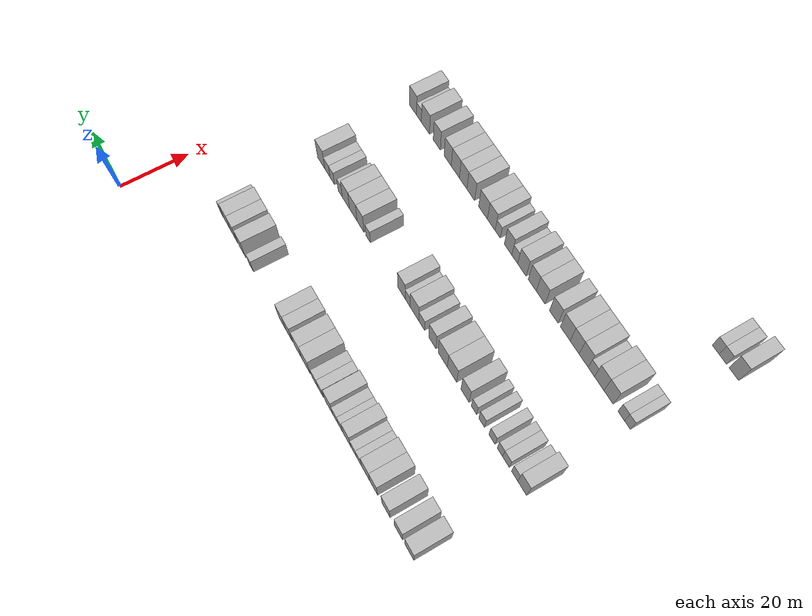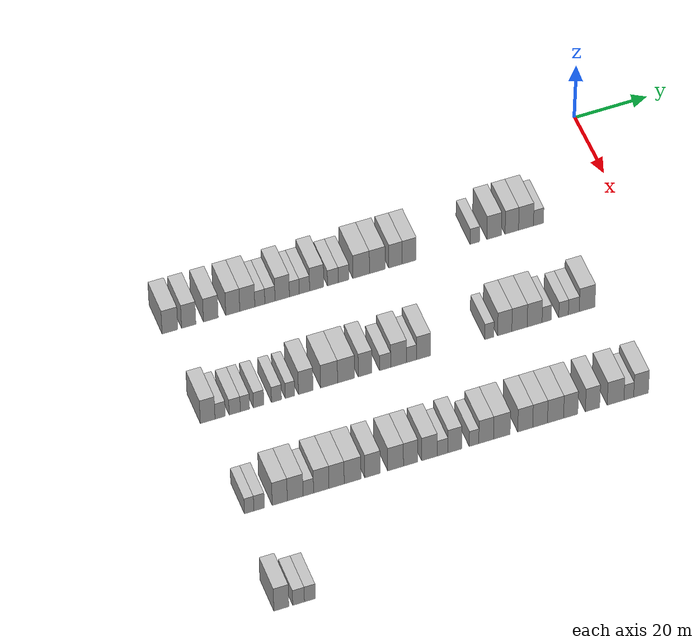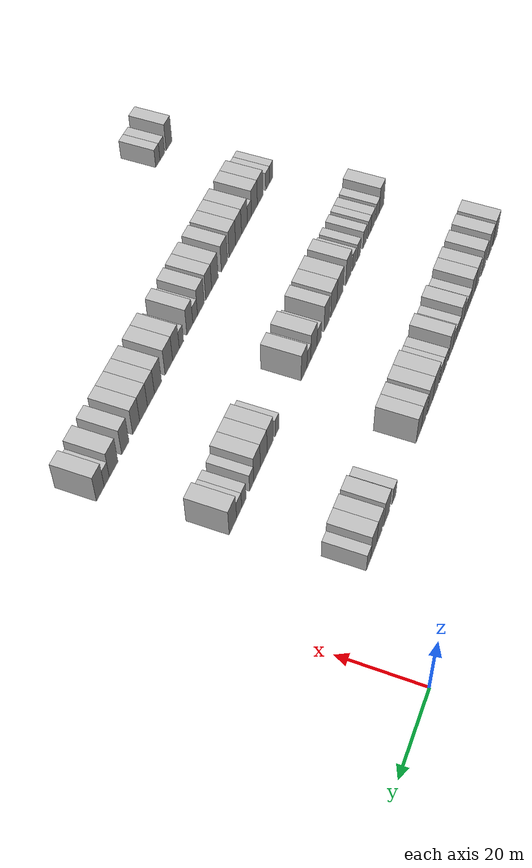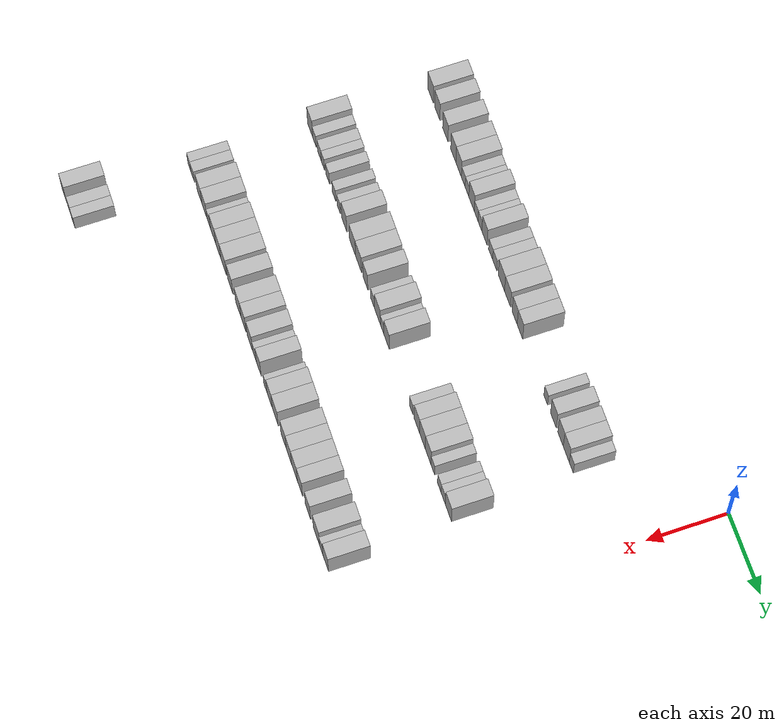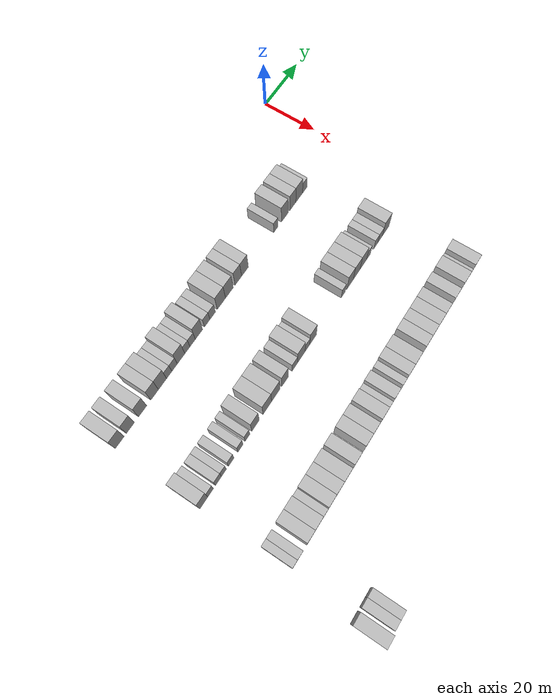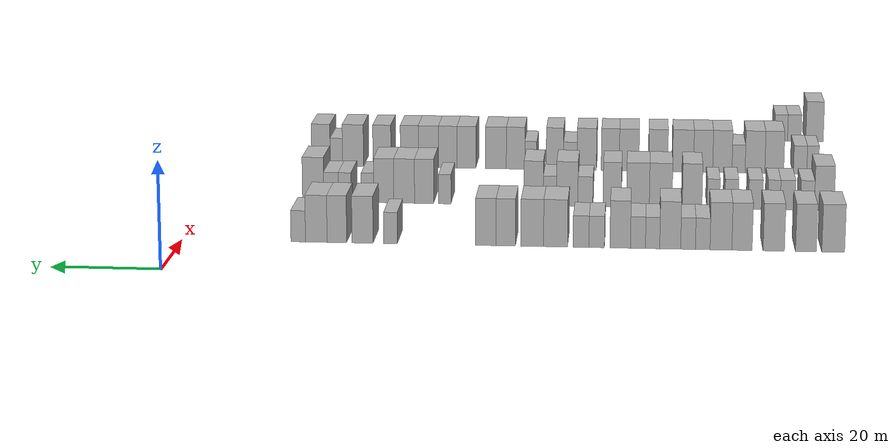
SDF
<sdf version="1.6">
 <world name="default">
  <model name="building_88">
   <static>1</static>
   <pose>25.0000 -120.6098 0 0.000000 0.000000 0.000000</pose>
   <link name="link">
    <pose>0 0 4.50 0 0 0</pose>
    <collision name="collision"><geometry><box><size>10.0000 4.1517 9.0000</size></box></geometry></collision>
    <visual name="visual">
     <cast_shadows>0</cast_shadows>
     <geometry><box><size>10.0000 4.1517 9.0000</size></box></geometry>
     <material>
      <script>
       <uri>model://HANNAS_wall/materials/scripts</uri>
       <uri>model://HANNAS_wall/materials/textures</uri>
       <name>vrc/HANNAS_wall</name>
      </script>
     </material>
    </visual>
   </link>
  </model>
  <model name="building_89">
   <static>1</static>
   <pose>25.0000 -115.6370 0 0.000000 0.000000 0.000000</pose>
   <link name="link">
    <pose>0 0 4.50 0 0 0</pose>
    <collision name="collision"><geometry><box><size>10.0000 3.7940 9.0000</size></box></geometry></collision>
    <visual name="visual">
     <cast_shadows>0</cast_shadows>
     <geometry><box><size>10.0000 3.7940 9.0000</size></box></geometry>
     <material>
      <script>
       <uri>model://HANNAS_wall/materials/scripts</uri>
       <uri>model://HANNAS_wall/materials/textures</uri>
       <name>vrc/HANNAS_wall</name>
      </script>
     </material>
    </visual>
   </link>
  </model>
  <model name="building_90">
   <static>1</static>
   <pose>25.0000 -109.7876 0 0.000000 0.000000 0.000000</pose>
   <link name="link">
    <pose>0 0 4.50 0 0 0</pose>
    <collision name="collision"><geometry><box><size>10.0000 3.9049 9.0000</size></box></geometry></collision>
    <visual name="visual">
     <cast_shadows>0</cast_shadows>
     <geometry><box><size>10.0000 3.9049 9.0000</size></box></geometry>
     <material>
      <script>
       <uri>model://HANNAS_wall/materials/scripts</uri>
       <uri>model://HANNAS_wall/materials/textures</uri>
       <name>vrc/HANNAS_wall</name>
      </script>
     </material>
    </visual>
   </link>
  </model>
  <model name="building_91">
   <static>1</static>
   <pose>25.0000 -103.9787 0 0.000000 0.000000 0.000000</pose>
   <link name="link">
    <pose>0 0 4.50 0 0 0</pose>
    <collision name="collision"><geometry><box><size>10.0000 3.7131 9.0000</size></box></geometry></collision>
    <visual name="visual">
     <cast_shadows>0</cast_shadows>
     <geometry><box><size>10.0000 3.7131 9.0000</size></box></geometry>
     <material>
      <script>
       <uri>model://HANNAS_wall/materials/scripts</uri>
       <uri>model://HANNAS_wall/materials/textures</uri>
       <name>vrc/HANNAS_wall</name>
      </script>
     </material>
    </visual>
   </link>
  </model>
  <model name="building_92">
   <static>1</static>
   <pose>25.0000 -100.1239 0 0.000000 0.000000 0.000000</pose>
   <link name="link">
    <pose>0 0 4.50 0 0 0</pose>
    <collision name="collision"><geometry><box><size>10.0000 3.9965 9.0000</size></box></geometry></collision>
    <visual name="visual">
     <cast_shadows>0</cast_shadows>
     <geometry><box><size>10.0000 3.9965 9.0000</size></box></geometry>
     <material>
      <script>
       <uri>model://HANNAS_wall/materials/scripts</uri>
       <uri>model://HANNAS_wall/materials/textures</uri>
       <name>vrc/HANNAS_wall</name>
      </script>
     </material>
    </visual>
   </link>
  </model>
  <model name="building_93">
   <static>1</static>
   <pose>25.0000 -96.7879 0 0.000000 0.000000 0.000000</pose>
   <link name="link">
    <pose>0 0 3.00 0 0 0</pose>
    <collision name="collision"><geometry><box><size>10.0000 2.6755 6.0000</size></box></geometry></collision>
    <visual name="visual">
     <cast_shadows>0</cast_shadows>
     <geometry><box><size>10.0000 2.6755 6.0000</size></box></geometry>
     <material>
      <script>
       <uri>model://HANNAS_wall/materials/scripts</uri>
       <uri>model://HANNAS_wall/materials/textures</uri>
       <name>vrc/HANNAS_wall</name>
      </script>
     </material>
    </visual>
   </link>
  </model>
  <model name="building_94">
   <static>1</static>
   <pose>25.0000 -94.0991 0 0.000000 0.000000 0.000000</pose>
   <link name="link">
    <pose>0 0 3.00 0 0 0</pose>
    <collision name="collision"><geometry><box><size>10.0000 2.7020 6.0000</size></box></geometry></collision>
    <visual name="visual">
     <cast_shadows>0</cast_shadows>
     <geometry><box><size>10.0000 2.7020 6.0000</size></box></geometry>
     <material>
      <script>
       <uri>model://HANNAS_wall/materials/scripts</uri>
       <uri>model://HANNAS_wall/materials/textures</uri>
       <name>vrc/HANNAS_wall</name>
      </script>
     </material>
    </visual>
   </link>
  </model>
  <model name="building_95">
   <static>1</static>
   <pose>25.0000 -90.8267 0 0.000000 0.000000 0.000000</pose>
   <link name="link">
    <pose>0 0 4.50 0 0 0</pose>
    <collision name="collision"><geometry><box><size>10.0000 3.8428 9.0000</size></box></geometry></collision>
    <visual name="visual">
     <cast_shadows>0</cast_shadows>
     <geometry><box><size>10.0000 3.8428 9.0000</size></box></geometry>
     <material>
      <script>
       <uri>model://HANNAS_wall/materials/scripts</uri>
       <uri>model://HANNAS_wall/materials/textures</uri>
       <name>vrc/HANNAS_wall</name>
      </script>
     </material>
    </visual>
   </link>
  </model>
  <model name="building_96">
   <static>1</static>
   <pose>25.0000 -87.5977 0 0.000000 0.000000 0.000000</pose>
   <link name="link">
    <pose>0 0 3.00 0 0 0</pose>
    <collision name="collision"><geometry><box><size>10.0000 2.6153 6.0000</size></box></geometry></collision>
    <visual name="visual">
     <cast_shadows>0</cast_shadows>
     <geometry><box><size>10.0000 2.6153 6.0000</size></box></geometry>
     <material>
      <script>
       <uri>model://HANNAS_wall/materials/scripts</uri>
       <uri>model://HANNAS_wall/materials/textures</uri>
       <name>vrc/HANNAS_wall</name>
      </script>
     </material>
    </visual>
   </link>
  </model>
  <model name="building_97">
   <static>1</static>
   <pose>25.0000 -84.9058 0 0.000000 0.000000 0.000000</pose>
   <link name="link">
    <pose>0 0 3.00 0 0 0</pose>
    <collision name="collision"><geometry><box><size>10.0000 2.7685 6.0000</size></box></geometry></collision>
    <visual name="visual">
     <cast_shadows>0</cast_shadows>
     <geometry><box><size>10.0000 2.7685 6.0000</size></box></geometry>
     <material>
      <script>
       <uri>model://HANNAS_wall/materials/scripts</uri>
       <uri>model://HANNAS_wall/materials/textures</uri>
       <name>vrc/HANNAS_wall</name>
      </script>
     </material>
    </visual>
   </link>
  </model>
  <model name="building_98">
   <static>1</static>
   <pose>25.0000 -81.6322 0 0.000000 0.000000 0.000000</pose>
   <link name="link">
    <pose>0 0 4.50 0 0 0</pose>
    <collision name="collision"><geometry><box><size>10.0000 3.7789 9.0000</size></box></geometry></collision>
    <visual name="visual">
     <cast_shadows>0</cast_shadows>
     <geometry><box><size>10.0000 3.7789 9.0000</size></box></geometry>
     <material>
      <script>
       <uri>model://HANNAS_wall/materials/scripts</uri>
       <uri>model://HANNAS_wall/materials/textures</uri>
       <name>vrc/HANNAS_wall</name>
      </script>
     </material>
    </visual>
   </link>
  </model>
  <model name="building_99">
   <static>1</static>
   <pose>25.0000 -77.3094 0 0.000000 0.000000 0.000000</pose>
   <link name="link">
    <pose>0 0 3.00 0 0 0</pose>
    <collision name="collision"><geometry><box><size>10.0000 2.8667 6.0000</size></box></geometry></collision>
    <visual name="visual">
     <cast_shadows>0</cast_shadows>
     <geometry><box><size>10.0000 2.8667 6.0000</size></box></geometry>
     <material>
      <script>
       <uri>model://HANNAS_wall/materials/scripts</uri>
       <uri>model://HANNAS_wall/materials/textures</uri>
       <name>vrc/HANNAS_wall</name>
      </script>
     </material>
    </visual>
   </link>
  </model>
  <model name="building_100">
   <static>1</static>
   <pose>25.0000 -74.4114 0 0.000000 0.000000 0.000000</pose>
   <link name="link">
    <pose>0 0 3.00 0 0 0</pose>
    <collision name="collision"><geometry><box><size>10.0000 2.9293 6.0000</size></box></geometry></collision>
    <visual name="visual">
     <cast_shadows>0</cast_shadows>
     <geometry><box><size>10.0000 2.9293 6.0000</size></box></geometry>
     <material>
      <script>
       <uri>model://HANNAS_wall/materials/scripts</uri>
       <uri>model://HANNAS_wall/materials/textures</uri>
       <name>vrc/HANNAS_wall</name>
      </script>
     </material>
    </visual>
   </link>
  </model>
  <model name="building_101">
   <static>1</static>
   <pose>25.0000 -69.7262 0 0.000000 0.000000 0.000000</pose>
   <link name="link">
    <pose>0 0 4.50 0 0 0</pose>
    <collision name="collision"><geometry><box><size>10.0000 4.4411 9.0000</size></box></geometry></collision>
    <visual name="visual">
     <cast_shadows>0</cast_shadows>
     <geometry><box><size>10.0000 4.4411 9.0000</size></box></geometry>
     <material>
      <script>
       <uri>model://HANNAS_wall/materials/scripts</uri>
       <uri>model://HANNAS_wall/materials/textures</uri>
       <name>vrc/HANNAS_wall</name>
      </script>
     </material>
    </visual>
   </link>
  </model>
  <model name="building_102">
   <static>1</static>
   <pose>25.0000 -65.4036 0 0.000000 0.000000 0.000000</pose>
   <link name="link">
    <pose>0 0 4.50 0 0 0</pose>
    <collision name="collision"><geometry><box><size>10.0000 4.2041 9.0000</size></box></geometry></collision>
    <visual name="visual">
     <cast_shadows>0</cast_shadows>
     <geometry><box><size>10.0000 4.2041 9.0000</size></box></geometry>
     <material>
      <script>
       <uri>model://HANNAS_wall/materials/scripts</uri>
       <uri>model://HANNAS_wall/materials/textures</uri>
       <name>vrc/HANNAS_wall</name>
      </script>
     </material>
    </visual>
   </link>
  </model>
  <model name="building_103">
   <static>1</static>
   <pose>25.0000 -60.5003 0 0.000000 0.000000 0.000000</pose>
   <link name="link">
    <pose>0 0 4.50 0 0 0</pose>
    <collision name="collision"><geometry><box><size>10.0000 3.6025 9.0000</size></box></geometry></collision>
    <visual name="visual">
     <cast_shadows>0</cast_shadows>
     <geometry><box><size>10.0000 3.6025 9.0000</size></box></geometry>
     <material>
      <script>
       <uri>model://HANNAS_wall/materials/scripts</uri>
       <uri>model://HANNAS_wall/materials/textures</uri>
       <name>vrc/HANNAS_wall</name>
      </script>
     </material>
    </visual>
   </link>
  </model>
  <model name="building_104">
   <static>1</static>
   <pose>25.0000 -56.8056 0 0.000000 0.000000 0.000000</pose>
   <link name="link">
    <pose>0 0 4.50 0 0 0</pose>
    <collision name="collision"><geometry><box><size>10.0000 3.7869 9.0000</size></box></geometry></collision>
    <visual name="visual">
     <cast_shadows>0</cast_shadows>
     <geometry><box><size>10.0000 3.7869 9.0000</size></box></geometry>
     <material>
      <script>
       <uri>model://HANNAS_wall/materials/scripts</uri>
       <uri>model://HANNAS_wall/materials/textures</uri>
       <name>vrc/HANNAS_wall</name>
      </script>
     </material>
    </visual>
   </link>
  </model>
  <model name="building_105">
   <static>1</static>
   <pose>25.0000 -39.0948 0 0.000000 0.000000 0.000000</pose>
   <link name="link">
    <pose>0 0 3.00 0 0 0</pose>
    <collision name="collision"><geometry><box><size>10.0000 2.5449 6.0000</size></box></geometry></collision>
    <visual name="visual">
     <cast_shadows>0</cast_shadows>
     <geometry><box><size>10.0000 2.5449 6.0000</size></box></geometry>
     <material>
      <script>
       <uri>model://HANNAS_wall/materials/scripts</uri>
       <uri>model://HANNAS_wall/materials/textures</uri>
       <name>vrc/HANNAS_wall</name>
      </script>
     </material>
    </visual>
   </link>
  </model>
  <model name="building_106">
   <static>1</static>
   <pose>25.0000 -33.8553 0 0.000000 0.000000 0.000000</pose>
   <link name="link">
    <pose>0 0 4.50 0 0 0</pose>
    <collision name="collision"><geometry><box><size>10.0000 3.9341 9.0000</size></box></geometry></collision>
    <visual name="visual">
     <cast_shadows>0</cast_shadows>
     <geometry><box><size>10.0000 3.9341 9.0000</size></box></geometry>
     <material>
      <script>
       <uri>model://HANNAS_wall/materials/scripts</uri>
       <uri>model://HANNAS_wall/materials/textures</uri>
       <name>vrc/HANNAS_wall</name>
      </script>
     </material>
    </visual>
   </link>
  </model>
  <model name="building_107">
   <static>1</static>
   <pose>25.0000 -29.0618 0 0.000000 0.000000 0.000000</pose>
   <link name="link">
    <pose>0 0 4.50 0 0 0</pose>
    <collision name="collision"><geometry><box><size>10.0000 3.6529 9.0000</size></box></geometry></collision>
    <visual name="visual">
     <cast_shadows>0</cast_shadows>
     <geometry><box><size>10.0000 3.6529 9.0000</size></box></geometry>
     <material>
      <script>
       <uri>model://HANNAS_wall/materials/scripts</uri>
       <uri>model://HANNAS_wall/materials/textures</uri>
       <name>vrc/HANNAS_wall</name>
      </script>
     </material>
    </visual>
   </link>
  </model>
  <model name="building_108">
   <static>1</static>
   <pose>25.0000 -25.2048 0 0.000000 0.000000 0.000000</pose>
   <link name="link">
    <pose>0 0 4.50 0 0 0</pose>
    <collision name="collision"><geometry><box><size>10.0000 4.0610 9.0000</size></box></geometry></collision>
    <visual name="visual">
     <cast_shadows>0</cast_shadows>
     <geometry><box><size>10.0000 4.0610 9.0000</size></box></geometry>
     <material>
      <script>
       <uri>model://HANNAS_wall/materials/scripts</uri>
       <uri>model://HANNAS_wall/materials/textures</uri>
       <name>vrc/HANNAS_wall</name>
      </script>
     </material>
    </visual>
   </link>
  </model>
  <model name="building_109">
   <static>1</static>
   <pose>25.0000 -21.8103 0 0.000000 0.000000 0.000000</pose>
   <link name="link">
    <pose>0 0 3.00 0 0 0</pose>
    <collision name="collision"><geometry><box><size>10.0000 2.7280 6.0000</size></box></geometry></collision>
    <visual name="visual">
     <cast_shadows>0</cast_shadows>
     <geometry><box><size>10.0000 2.7280 6.0000</size></box></geometry>
     <material>
      <script>
       <uri>model://HANNAS_wall/materials/scripts</uri>
       <uri>model://HANNAS_wall/materials/textures</uri>
       <name>vrc/HANNAS_wall</name>
      </script>
     </material>
    </visual>
   </link>
  </model>
  <model name="building_324">
   <static>1</static>
   <pose>55.0000 -121.1859 0 0.000000 0.000000 0.000000</pose>
   <link name="link">
    <pose>0 0 4.50 0 0 0</pose>
    <collision name="collision"><geometry><box><size>10.0000 3.8424 9.0000</size></box></geometry></collision>
    <visual name="visual">
     <cast_shadows>0</cast_shadows>
     <geometry><box><size>10.0000 3.8424 9.0000</size></box></geometry>
     <material>
      <script>
       <uri>model://HANNAS_wall/materials/scripts</uri>
       <uri>model://HANNAS_wall/materials/textures</uri>
       <name>vrc/HANNAS_wall</name>
      </script>
     </material>
    </visual>
   </link>
  </model>
  <model name="building_325">
   <static>1</static>
   <pose>55.0000 -117.9131 0 0.000000 0.000000 0.000000</pose>
   <link name="link">
    <pose>0 0 3.00 0 0 0</pose>
    <collision name="collision"><geometry><box><size>10.0000 2.7032 6.0000</size></box></geometry></collision>
    <visual name="visual">
     <cast_shadows>0</cast_shadows>
     <geometry><box><size>10.0000 2.7032 6.0000</size></box></geometry>
     <material>
      <script>
       <uri>model://HANNAS_wall/materials/scripts</uri>
       <uri>model://HANNAS_wall/materials/textures</uri>
       <name>vrc/HANNAS_wall</name>
      </script>
     </material>
    </visual>
   </link>
  </model>
  <model name="building_326">
   <static>1</static>
   <pose>55.0000 -114.0965 0 0.000000 0.000000 0.000000</pose>
   <link name="link">
    <pose>0 0 3.00 0 0 0</pose>
    <collision name="collision"><geometry><box><size>10.0000 2.9299 6.0000</size></box></geometry></collision>
    <visual name="visual">
     <cast_shadows>0</cast_shadows>
     <geometry><box><size>10.0000 2.9299 6.0000</size></box></geometry>
     <material>
      <script>
       <uri>model://HANNAS_wall/materials/scripts</uri>
       <uri>model://HANNAS_wall/materials/textures</uri>
       <name>vrc/HANNAS_wall</name>
      </script>
     </material>
    </visual>
   </link>
  </model>
  <model name="building_327">
   <static>1</static>
   <pose>55.0000 -111.4250 0 0.000000 0.000000 0.000000</pose>
   <link name="link">
    <pose>0 0 3.00 0 0 0</pose>
    <collision name="collision"><geometry><box><size>10.0000 2.4131 6.0000</size></box></geometry></collision>
    <visual name="visual">
     <cast_shadows>0</cast_shadows>
     <geometry><box><size>10.0000 2.4131 6.0000</size></box></geometry>
     <material>
      <script>
       <uri>model://HANNAS_wall/materials/scripts</uri>
       <uri>model://HANNAS_wall/materials/textures</uri>
       <name>vrc/HANNAS_wall</name>
      </script>
     </material>
    </visual>
   </link>
  </model>
  <model name="building_328">
   <static>1</static>
   <pose>55.0000 -107.8399 0 0.000000 0.000000 0.000000</pose>
   <link name="link">
    <pose>0 0 3.00 0 0 0</pose>
    <collision name="collision"><geometry><box><size>10.0000 2.7569 6.0000</size></box></geometry></collision>
    <visual name="visual">
     <cast_shadows>0</cast_shadows>
     <geometry><box><size>10.0000 2.7569 6.0000</size></box></geometry>
     <material>
      <script>
       <uri>model://HANNAS_wall/materials/scripts</uri>
       <uri>model://HANNAS_wall/materials/textures</uri>
       <name>vrc/HANNAS_wall</name>
      </script>
     </material>
    </visual>
   </link>
  </model>
  <model name="building_329">
   <static>1</static>
   <pose>55.0000 -103.1481 0 0.000000 0.000000 0.000000</pose>
   <link name="link">
    <pose>0 0 3.00 0 0 0</pose>
    <collision name="collision"><geometry><box><size>10.0000 2.6268 6.0000</size></box></geometry></collision>
    <visual name="visual">
     <cast_shadows>0</cast_shadows>
     <geometry><box><size>10.0000 2.6268 6.0000</size></box></geometry>
     <material>
      <script>
       <uri>model://HANNAS_wall/materials/scripts</uri>
       <uri>model://HANNAS_wall/materials/textures</uri>
       <name>vrc/HANNAS_wall</name>
      </script>
     </material>
    </visual>
   </link>
  </model>
  <model name="building_330">
   <static>1</static>
   <pose>55.0000 -99.6075 0 0.000000 0.000000 0.000000</pose>
   <link name="link">
    <pose>0 0 3.00 0 0 0</pose>
    <collision name="collision"><geometry><box><size>10.0000 2.4546 6.0000</size></box></geometry></collision>
    <visual name="visual">
     <cast_shadows>0</cast_shadows>
     <geometry><box><size>10.0000 2.4546 6.0000</size></box></geometry>
     <material>
      <script>
       <uri>model://HANNAS_wall/materials/scripts</uri>
       <uri>model://HANNAS_wall/materials/textures</uri>
       <name>vrc/HANNAS_wall</name>
      </script>
     </material>
    </visual>
   </link>
  </model>
  <model name="building_331">
   <static>1</static>
   <pose>55.0000 -95.4575 0 0.000000 0.000000 0.000000</pose>
   <link name="link">
    <pose>0 0 4.50 0 0 0</pose>
    <collision name="collision"><geometry><box><size>10.0000 3.8453 9.0000</size></box></geometry></collision>
    <visual name="visual">
     <cast_shadows>0</cast_shadows>
     <geometry><box><size>10.0000 3.8453 9.0000</size></box></geometry>
     <material>
      <script>
       <uri>model://HANNAS_wall/materials/scripts</uri>
       <uri>model://HANNAS_wall/materials/textures</uri>
       <name>vrc/HANNAS_wall</name>
      </script>
     </material>
    </visual>
   </link>
  </model>
  <model name="building_332">
   <static>1</static>
   <pose>55.0000 -89.3009 0 0.000000 0.000000 0.000000</pose>
   <link name="link">
    <pose>0 0 4.50 0 0 0</pose>
    <collision name="collision"><geometry><box><size>10.0000 4.4681 9.0000</size></box></geometry></collision>
    <visual name="visual">
     <cast_shadows>0</cast_shadows>
     <geometry><box><size>10.0000 4.4681 9.0000</size></box></geometry>
     <material>
      <script>
       <uri>model://HANNAS_wall/materials/scripts</uri>
       <uri>model://HANNAS_wall/materials/textures</uri>
       <name>vrc/HANNAS_wall</name>
      </script>
     </material>
    </visual>
   </link>
  </model>
  <model name="building_333">
   <static>1</static>
   <pose>55.0000 -84.8274 0 0.000000 0.000000 0.000000</pose>
   <link name="link">
    <pose>0 0 4.50 0 0 0</pose>
    <collision name="collision"><geometry><box><size>10.0000 4.4789 9.0000</size></box></geometry></collision>
    <visual name="visual">
     <cast_shadows>0</cast_shadows>
     <geometry><box><size>10.0000 4.4789 9.0000</size></box></geometry>
     <material>
      <script>
       <uri>model://HANNAS_wall/materials/scripts</uri>
       <uri>model://HANNAS_wall/materials/textures</uri>
       <name>vrc/HANNAS_wall</name>
      </script>
     </material>
    </visual>
   </link>
  </model>
  <model name="building_334">
   <static>1</static>
   <pose>55.0000 -79.7836 0 0.000000 0.000000 0.000000</pose>
   <link name="link">
    <pose>0 0 4.50 0 0 0</pose>
    <collision name="collision"><geometry><box><size>10.0000 3.6087 9.0000</size></box></geometry></collision>
    <visual name="visual">
     <cast_shadows>0</cast_shadows>
     <geometry><box><size>10.0000 3.6087 9.0000</size></box></geometry>
     <material>
      <script>
       <uri>model://HANNAS_wall/materials/scripts</uri>
       <uri>model://HANNAS_wall/materials/textures</uri>
       <name>vrc/HANNAS_wall</name>
      </script>
     </material>
    </visual>
   </link>
  </model>
  <model name="building_335">
   <static>1</static>
   <pose>55.0000 -74.5051 0 0.000000 0.000000 0.000000</pose>
   <link name="link">
    <pose>0 0 3.00 0 0 0</pose>
    <collision name="collision"><geometry><box><size>10.0000 2.9483 6.0000</size></box></geometry></collision>
    <visual name="visual">
     <cast_shadows>0</cast_shadows>
     <geometry><box><size>10.0000 2.9483 6.0000</size></box></geometry>
     <material>
      <script>
       <uri>model://HANNAS_wall/materials/scripts</uri>
       <uri>model://HANNAS_wall/materials/textures</uri>
       <name>vrc/HANNAS_wall</name>
      </script>
     </material>
    </visual>
   </link>
  </model>
  <model name="building_336">
   <static>1</static>
   <pose>55.0000 -70.9132 0 0.000000 0.000000 0.000000</pose>
   <link name="link">
    <pose>0 0 4.50 0 0 0</pose>
    <collision name="collision"><geometry><box><size>10.0000 4.2356 9.0000</size></box></geometry></collision>
    <visual name="visual">
     <cast_shadows>0</cast_shadows>
     <geometry><box><size>10.0000 4.2356 9.0000</size></box></geometry>
     <material>
      <script>
       <uri>model://HANNAS_wall/materials/scripts</uri>
       <uri>model://HANNAS_wall/materials/textures</uri>
       <name>vrc/HANNAS_wall</name>
      </script>
     </material>
    </visual>
   </link>
  </model>
  <model name="building_337">
   <static>1</static>
   <pose>55.0000 -67.4948 0 0.000000 0.000000 0.000000</pose>
   <link name="link">
    <pose>0 0 3.00 0 0 0</pose>
    <collision name="collision"><geometry><box><size>10.0000 2.6012 6.0000</size></box></geometry></collision>
    <visual name="visual">
     <cast_shadows>0</cast_shadows>
     <geometry><box><size>10.0000 2.6012 6.0000</size></box></geometry>
     <material>
      <script>
       <uri>model://HANNAS_wall/materials/scripts</uri>
       <uri>model://HANNAS_wall/materials/textures</uri>
       <name>vrc/HANNAS_wall</name>
      </script>
     </material>
    </visual>
   </link>
  </model>
  <model name="building_338">
   <static>1</static>
   <pose>55.0000 -64.2886 0 0.000000 0.000000 0.000000</pose>
   <link name="link">
    <pose>0 0 4.50 0 0 0</pose>
    <collision name="collision"><geometry><box><size>10.0000 3.8113 9.0000</size></box></geometry></collision>
    <visual name="visual">
     <cast_shadows>0</cast_shadows>
     <geometry><box><size>10.0000 3.8113 9.0000</size></box></geometry>
     <material>
      <script>
       <uri>model://HANNAS_wall/materials/scripts</uri>
       <uri>model://HANNAS_wall/materials/textures</uri>
       <name>vrc/HANNAS_wall</name>
      </script>
     </material>
    </visual>
   </link>
  </model>
  <model name="building_339">
   <static>1</static>
   <pose>55.0000 -46.7413 0 0.000000 0.000000 0.000000</pose>
   <link name="link">
    <pose>0 0 3.00 0 0 0</pose>
    <collision name="collision"><geometry><box><size>10.0000 2.4278 6.0000</size></box></geometry></collision>
    <visual name="visual">
     <cast_shadows>0</cast_shadows>
     <geometry><box><size>10.0000 2.4278 6.0000</size></box></geometry>
     <material>
      <script>
       <uri>model://HANNAS_wall/materials/scripts</uri>
       <uri>model://HANNAS_wall/materials/textures</uri>
       <name>vrc/HANNAS_wall</name>
      </script>
     </material>
    </visual>
   </link>
  </model>
  <model name="building_340">
   <static>1</static>
   <pose>55.0000 -42.6299 0 0.000000 0.000000 0.000000</pose>
   <link name="link">
    <pose>0 0 4.50 0 0 0</pose>
    <collision name="collision"><geometry><box><size>10.0000 3.7952 9.0000</size></box></geometry></collision>
    <visual name="visual">
     <cast_shadows>0</cast_shadows>
     <geometry><box><size>10.0000 3.7952 9.0000</size></box></geometry>
     <material>
      <script>
       <uri>model://HANNAS_wall/materials/scripts</uri>
       <uri>model://HANNAS_wall/materials/textures</uri>
       <name>vrc/HANNAS_wall</name>
      </script>
     </material>
    </visual>
   </link>
  </model>
  <model name="building_341">
   <static>1</static>
   <pose>55.0000 -38.6740 0 0.000000 0.000000 0.000000</pose>
   <link name="link">
    <pose>0 0 4.50 0 0 0</pose>
    <collision name="collision"><geometry><box><size>10.0000 4.1165 9.0000</size></box></geometry></collision>
    <visual name="visual">
     <cast_shadows>0</cast_shadows>
     <geometry><box><size>10.0000 4.1165 9.0000</size></box></geometry>
     <material>
      <script>
       <uri>model://HANNAS_wall/materials/scripts</uri>
       <uri>model://HANNAS_wall/materials/textures</uri>
       <name>vrc/HANNAS_wall</name>
      </script>
     </material>
    </visual>
   </link>
  </model>
  <model name="building_342">
   <static>1</static>
   <pose>55.0000 -34.6197 0 0.000000 0.000000 0.000000</pose>
   <link name="link">
    <pose>0 0 4.50 0 0 0</pose>
    <collision name="collision"><geometry><box><size>10.0000 3.9920 9.0000</size></box></geometry></collision>
    <visual name="visual">
     <cast_shadows>0</cast_shadows>
     <geometry><box><size>10.0000 3.9920 9.0000</size></box></geometry>
     <material>
      <script>
       <uri>model://HANNAS_wall/materials/scripts</uri>
       <uri>model://HANNAS_wall/materials/textures</uri>
       <name>vrc/HANNAS_wall</name>
      </script>
     </material>
    </visual>
   </link>
  </model>
  <model name="building_343">
   <static>1</static>
   <pose>55.0000 -31.3801 0 0.000000 0.000000 0.000000</pose>
   <link name="link">
    <pose>0 0 3.00 0 0 0</pose>
    <collision name="collision"><geometry><box><size>10.0000 2.4872 6.0000</size></box></geometry></collision>
    <visual name="visual">
     <cast_shadows>0</cast_shadows>
     <geometry><box><size>10.0000 2.4872 6.0000</size></box></geometry>
     <material>
      <script>
       <uri>model://HANNAS_wall/materials/scripts</uri>
       <uri>model://HANNAS_wall/materials/textures</uri>
       <name>vrc/HANNAS_wall</name>
      </script>
     </material>
    </visual>
   </link>
  </model>
  <model name="building_344">
   <static>1</static>
   <pose>55.0000 -26.8437 0 0.000000 0.000000 0.000000</pose>
   <link name="link">
    <pose>0 0 3.00 0 0 0</pose>
    <collision name="collision"><geometry><box><size>10.0000 2.5857 6.0000</size></box></geometry></collision>
    <visual name="visual">
     <cast_shadows>0</cast_shadows>
     <geometry><box><size>10.0000 2.5857 6.0000</size></box></geometry>
     <material>
      <script>
       <uri>model://HANNAS_wall/materials/scripts</uri>
       <uri>model://HANNAS_wall/materials/textures</uri>
       <name>vrc/HANNAS_wall</name>
      </script>
     </material>
    </visual>
   </link>
  </model>
  <model name="building_345">
   <static>1</static>
   <pose>55.0000 -24.0955 0 0.000000 0.000000 0.000000</pose>
   <link name="link">
    <pose>0 0 3.00 0 0 0</pose>
    <collision name="collision"><geometry><box><size>10.0000 2.9107 6.0000</size></box></geometry></collision>
    <visual name="visual">
     <cast_shadows>0</cast_shadows>
     <geometry><box><size>10.0000 2.9107 6.0000</size></box></geometry>
     <material>
      <script>
       <uri>model://HANNAS_wall/materials/scripts</uri>
       <uri>model://HANNAS_wall/materials/textures</uri>
       <name>vrc/HANNAS_wall</name>
      </script>
     </material>
    </visual>
   </link>
  </model>
  <model name="building_346">
   <static>1</static>
   <pose>55.0000 -20.5237 0 0.000000 0.000000 0.000000</pose>
   <link name="link">
    <pose>0 0 4.50 0 0 0</pose>
    <collision name="collision"><geometry><box><size>10.0000 4.2328 9.0000</size></box></geometry></collision>
    <visual name="visual">
     <cast_shadows>0</cast_shadows>
     <geometry><box><size>10.0000 4.2328 9.0000</size></box></geometry>
     <material>
      <script>
       <uri>model://HANNAS_wall/materials/scripts</uri>
       <uri>model://HANNAS_wall/materials/textures</uri>
       <name>vrc/HANNAS_wall</name>
      </script>
     </material>
    </visual>
   </link>
  </model>
  <model name="building_553">
   <static>1</static>
   <pose>85.0000 -121.0340 0 0.000000 0.000000 0.000000</pose>
   <link name="link">
    <pose>0 0 3.00 0 0 0</pose>
    <collision name="collision"><geometry><box><size>10.0000 2.4371 6.0000</size></box></geometry></collision>
    <visual name="visual">
     <cast_shadows>0</cast_shadows>
     <geometry><box><size>10.0000 2.4371 6.0000</size></box></geometry>
     <material>
      <script>
       <uri>model://HANNAS_wall/materials/scripts</uri>
       <uri>model://HANNAS_wall/materials/textures</uri>
       <name>vrc/HANNAS_wall</name>
      </script>
     </material>
    </visual>
   </link>
  </model>
  <model name="building_554">
   <static>1</static>
   <pose>85.0000 -118.4357 0 0.000000 0.000000 0.000000</pose>
   <link name="link">
    <pose>0 0 3.00 0 0 0</pose>
    <collision name="collision"><geometry><box><size>10.0000 2.7595 6.0000</size></box></geometry></collision>
    <visual name="visual">
     <cast_shadows>0</cast_shadows>
     <geometry><box><size>10.0000 2.7595 6.0000</size></box></geometry>
     <material>
      <script>
       <uri>model://HANNAS_wall/materials/scripts</uri>
       <uri>model://HANNAS_wall/materials/textures</uri>
       <name>vrc/HANNAS_wall</name>
      </script>
     </material>
    </visual>
   </link>
  </model>
  <model name="building_555">
   <static>1</static>
   <pose>85.0000 -113.1026 0 0.000000 0.000000 0.000000</pose>
   <link name="link">
    <pose>0 0 4.50 0 0 0</pose>
    <collision name="collision"><geometry><box><size>10.0000 3.9067 9.0000</size></box></geometry></collision>
    <visual name="visual">
     <cast_shadows>0</cast_shadows>
     <geometry><box><size>10.0000 3.9067 9.0000</size></box></geometry>
     <material>
      <script>
       <uri>model://HANNAS_wall/materials/scripts</uri>
       <uri>model://HANNAS_wall/materials/textures</uri>
       <name>vrc/HANNAS_wall</name>
      </script>
     </material>
    </visual>
   </link>
  </model>
  <model name="building_556">
   <static>1</static>
   <pose>85.0000 -109.1033 0 0.000000 0.000000 0.000000</pose>
   <link name="link">
    <pose>0 0 4.50 0 0 0</pose>
    <collision name="collision"><geometry><box><size>10.0000 4.0920 9.0000</size></box></geometry></collision>
    <visual name="visual">
     <cast_shadows>0</cast_shadows>
     <geometry><box><size>10.0000 4.0920 9.0000</size></box></geometry>
     <material>
      <script>
       <uri>model://HANNAS_wall/materials/scripts</uri>
       <uri>model://HANNAS_wall/materials/textures</uri>
       <name>vrc/HANNAS_wall</name>
      </script>
     </material>
    </visual>
   </link>
  </model>
  <model name="building_557">
   <static>1</static>
   <pose>85.0000 -105.6974 0 0.000000 0.000000 0.000000</pose>
   <link name="link">
    <pose>0 0 3.00 0 0 0</pose>
    <collision name="collision"><geometry><box><size>10.0000 2.7197 6.0000</size></box></geometry></collision>
    <visual name="visual">
     <cast_shadows>0</cast_shadows>
     <geometry><box><size>10.0000 2.7197 6.0000</size></box></geometry>
     <material>
      <script>
       <uri>model://HANNAS_wall/materials/scripts</uri>
       <uri>model://HANNAS_wall/materials/textures</uri>
       <name>vrc/HANNAS_wall</name>
      </script>
     </material>
    </visual>
   </link>
  </model>
  <model name="building_558">
   <static>1</static>
   <pose>85.0000 -102.3330 0 0.000000 0.000000 0.000000</pose>
   <link name="link">
    <pose>0 0 4.50 0 0 0</pose>
    <collision name="collision"><geometry><box><size>10.0000 4.0091 9.0000</size></box></geometry></collision>
    <visual name="visual">
     <cast_shadows>0</cast_shadows>
     <geometry><box><size>10.0000 4.0091 9.0000</size></box></geometry>
     <material>
      <script>
       <uri>model://HANNAS_wall/materials/scripts</uri>
       <uri>model://HANNAS_wall/materials/textures</uri>
       <name>vrc/HANNAS_wall</name>
      </script>
     </material>
    </visual>
   </link>
  </model>
  <model name="building_559">
   <static>1</static>
   <pose>85.0000 -98.3438 0 0.000000 0.000000 0.000000</pose>
   <link name="link">
    <pose>0 0 4.50 0 0 0</pose>
    <collision name="collision"><geometry><box><size>10.0000 3.9692 9.0000</size></box></geometry></collision>
    <visual name="visual">
     <cast_shadows>0</cast_shadows>
     <geometry><box><size>10.0000 3.9692 9.0000</size></box></geometry>
     <material>
      <script>
       <uri>model://HANNAS_wall/materials/scripts</uri>
       <uri>model://HANNAS_wall/materials/textures</uri>
       <name>vrc/HANNAS_wall</name>
      </script>
     </material>
    </visual>
   </link>
  </model>
  <model name="building_560">
   <static>1</static>
   <pose>85.0000 -94.1728 0 0.000000 0.000000 0.000000</pose>
   <link name="link">
    <pose>0 0 4.50 0 0 0</pose>
    <collision name="collision"><geometry><box><size>10.0000 4.3730 9.0000</size></box></geometry></collision>
    <visual name="visual">
     <cast_shadows>0</cast_shadows>
     <geometry><box><size>10.0000 4.3730 9.0000</size></box></geometry>
     <material>
      <script>
       <uri>model://HANNAS_wall/materials/scripts</uri>
       <uri>model://HANNAS_wall/materials/textures</uri>
       <name>vrc/HANNAS_wall</name>
      </script>
     </material>
    </visual>
   </link>
  </model>
  <model name="building_561">
   <static>1</static>
   <pose>85.0000 -88.9922 0 0.000000 0.000000 0.000000</pose>
   <link name="link">
    <pose>0 0 4.50 0 0 0</pose>
    <collision name="collision"><geometry><box><size>10.0000 3.9882 9.0000</size></box></geometry></collision>
    <visual name="visual">
     <cast_shadows>0</cast_shadows>
     <geometry><box><size>10.0000 3.9882 9.0000</size></box></geometry>
     <material>
      <script>
       <uri>model://HANNAS_wall/materials/scripts</uri>
       <uri>model://HANNAS_wall/materials/textures</uri>
       <name>vrc/HANNAS_wall</name>
      </script>
     </material>
    </visual>
   </link>
  </model>
  <model name="building_562">
   <static>1</static>
   <pose>85.0000 -82.9476 0 0.000000 0.000000 0.000000</pose>
   <link name="link">
    <pose>0 0 4.50 0 0 0</pose>
    <collision name="collision"><geometry><box><size>10.0000 4.1009 9.0000</size></box></geometry></collision>
    <visual name="visual">
     <cast_shadows>0</cast_shadows>
     <geometry><box><size>10.0000 4.1009 9.0000</size></box></geometry>
     <material>
      <script>
       <uri>model://HANNAS_wall/materials/scripts</uri>
       <uri>model://HANNAS_wall/materials/textures</uri>
       <name>vrc/HANNAS_wall</name>
      </script>
     </material>
    </visual>
   </link>
  </model>
  <model name="building_563">
   <static>1</static>
   <pose>85.0000 -79.0079 0 0.000000 0.000000 0.000000</pose>
   <link name="link">
    <pose>0 0 4.50 0 0 0</pose>
    <collision name="collision"><geometry><box><size>10.0000 3.7787 9.0000</size></box></geometry></collision>
    <visual name="visual">
     <cast_shadows>0</cast_shadows>
     <geometry><box><size>10.0000 3.7787 9.0000</size></box></geometry>
     <material>
      <script>
       <uri>model://HANNAS_wall/materials/scripts</uri>
       <uri>model://HANNAS_wall/materials/textures</uri>
       <name>vrc/HANNAS_wall</name>
      </script>
     </material>
    </visual>
   </link>
  </model>
  <model name="building_564">
   <static>1</static>
   <pose>85.0000 -74.0860 0 0.000000 0.000000 0.000000</pose>
   <link name="link">
    <pose>0 0 4.50 0 0 0</pose>
    <collision name="collision"><geometry><box><size>10.0000 4.0651 9.0000</size></box></geometry></collision>
    <visual name="visual">
     <cast_shadows>0</cast_shadows>
     <geometry><box><size>10.0000 4.0651 9.0000</size></box></geometry>
     <material>
      <script>
       <uri>model://HANNAS_wall/materials/scripts</uri>
       <uri>model://HANNAS_wall/materials/textures</uri>
       <name>vrc/HANNAS_wall</name>
      </script>
     </material>
    </visual>
   </link>
  </model>
  <model name="building_565">
   <static>1</static>
   <pose>85.0000 -70.6397 0 0.000000 0.000000 0.000000</pose>
   <link name="link">
    <pose>0 0 3.00 0 0 0</pose>
    <collision name="collision"><geometry><box><size>10.0000 2.8273 6.0000</size></box></geometry></collision>
    <visual name="visual">
     <cast_shadows>0</cast_shadows>
     <geometry><box><size>10.0000 2.8273 6.0000</size></box></geometry>
     <material>
      <script>
       <uri>model://HANNAS_wall/materials/scripts</uri>
       <uri>model://HANNAS_wall/materials/textures</uri>
       <name>vrc/HANNAS_wall</name>
      </script>
     </material>
    </visual>
   </link>
  </model>
  <model name="building_566">
   <static>1</static>
   <pose>85.0000 -67.4195 0 0.000000 0.000000 0.000000</pose>
   <link name="link">
    <pose>0 0 4.50 0 0 0</pose>
    <collision name="collision"><geometry><box><size>10.0000 3.6132 9.0000</size></box></geometry></collision>
    <visual name="visual">
     <cast_shadows>0</cast_shadows>
     <geometry><box><size>10.0000 3.6132 9.0000</size></box></geometry>
     <material>
      <script>
       <uri>model://HANNAS_wall/materials/scripts</uri>
       <uri>model://HANNAS_wall/materials/textures</uri>
       <name>vrc/HANNAS_wall</name>
      </script>
     </material>
    </visual>
   </link>
  </model>
  <model name="building_567">
   <static>1</static>
   <pose>85.0000 -62.3617 0 0.000000 0.000000 0.000000</pose>
   <link name="link">
    <pose>0 0 3.00 0 0 0</pose>
    <collision name="collision"><geometry><box><size>10.0000 2.5025 6.0000</size></box></geometry></collision>
    <visual name="visual">
     <cast_shadows>0</cast_shadows>
     <geometry><box><size>10.0000 2.5025 6.0000</size></box></geometry>
     <material>
      <script>
       <uri>model://HANNAS_wall/materials/scripts</uri>
       <uri>model://HANNAS_wall/materials/textures</uri>
       <name>vrc/HANNAS_wall</name>
      </script>
     </material>
    </visual>
   </link>
  </model>
  <model name="building_568">
   <static>1</static>
   <pose>85.0000 -59.1702 0 0.000000 0.000000 0.000000</pose>
   <link name="link">
    <pose>0 0 4.50 0 0 0</pose>
    <collision name="collision"><geometry><box><size>10.0000 3.8805 9.0000</size></box></geometry></collision>
    <visual name="visual">
     <cast_shadows>0</cast_shadows>
     <geometry><box><size>10.0000 3.8805 9.0000</size></box></geometry>
     <material>
      <script>
       <uri>model://HANNAS_wall/materials/scripts</uri>
       <uri>model://HANNAS_wall/materials/textures</uri>
       <name>vrc/HANNAS_wall</name>
      </script>
     </material>
    </visual>
   </link>
  </model>
  <model name="building_569">
   <static>1</static>
   <pose>85.0000 -55.0295 0 0.000000 0.000000 0.000000</pose>
   <link name="link">
    <pose>0 0 4.50 0 0 0</pose>
    <collision name="collision"><geometry><box><size>10.0000 4.4008 9.0000</size></box></geometry></collision>
    <visual name="visual">
     <cast_shadows>0</cast_shadows>
     <geometry><box><size>10.0000 4.4008 9.0000</size></box></geometry>
     <material>
      <script>
       <uri>model://HANNAS_wall/materials/scripts</uri>
       <uri>model://HANNAS_wall/materials/textures</uri>
       <name>vrc/HANNAS_wall</name>
      </script>
     </material>
    </visual>
   </link>
  </model>
  <model name="building_570">
   <static>1</static>
   <pose>85.0000 -48.8509 0 0.000000 0.000000 0.000000</pose>
   <link name="link">
    <pose>0 0 4.50 0 0 0</pose>
    <collision name="collision"><geometry><box><size>10.0000 3.9565 9.0000</size></box></geometry></collision>
    <visual name="visual">
     <cast_shadows>0</cast_shadows>
     <geometry><box><size>10.0000 3.9565 9.0000</size></box></geometry>
     <material>
      <script>
       <uri>model://HANNAS_wall/materials/scripts</uri>
       <uri>model://HANNAS_wall/materials/textures</uri>
       <name>vrc/HANNAS_wall</name>
      </script>
     </material>
    </visual>
   </link>
  </model>
  <model name="building_571">
   <static>1</static>
   <pose>85.0000 -44.9251 0 0.000000 0.000000 0.000000</pose>
   <link name="link">
    <pose>0 0 4.50 0 0 0</pose>
    <collision name="collision"><geometry><box><size>10.0000 3.8951 9.0000</size></box></geometry></collision>
    <visual name="visual">
     <cast_shadows>0</cast_shadows>
     <geometry><box><size>10.0000 3.8951 9.0000</size></box></geometry>
     <material>
      <script>
       <uri>model://HANNAS_wall/materials/scripts</uri>
       <uri>model://HANNAS_wall/materials/textures</uri>
       <name>vrc/HANNAS_wall</name>
      </script>
     </material>
    </visual>
   </link>
  </model>
  <model name="building_572">
   <static>1</static>
   <pose>85.0000 -40.8428 0 0.000000 0.000000 0.000000</pose>
   <link name="link">
    <pose>0 0 4.50 0 0 0</pose>
    <collision name="collision"><geometry><box><size>10.0000 4.2695 9.0000</size></box></geometry></collision>
    <visual name="visual">
     <cast_shadows>0</cast_shadows>
     <geometry><box><size>10.0000 4.2695 9.0000</size></box></geometry>
     <material>
      <script>
       <uri>model://HANNAS_wall/materials/scripts</uri>
       <uri>model://HANNAS_wall/materials/textures</uri>
       <name>vrc/HANNAS_wall</name>
      </script>
     </material>
    </visual>
   </link>
  </model>
  <model name="building_573">
   <static>1</static>
   <pose>85.0000 -36.8135 0 0.000000 0.000000 0.000000</pose>
   <link name="link">
    <pose>0 0 4.50 0 0 0</pose>
    <collision name="collision"><geometry><box><size>10.0000 3.7890 9.0000</size></box></geometry></collision>
    <visual name="visual">
     <cast_shadows>0</cast_shadows>
     <geometry><box><size>10.0000 3.7890 9.0000</size></box></geometry>
     <material>
      <script>
       <uri>model://HANNAS_wall/materials/scripts</uri>
       <uri>model://HANNAS_wall/materials/textures</uri>
       <name>vrc/HANNAS_wall</name>
      </script>
     </material>
    </visual>
   </link>
  </model>
  <model name="building_574">
   <static>1</static>
   <pose>85.0000 -31.0192 0 0.000000 0.000000 0.000000</pose>
   <link name="link">
    <pose>0 0 4.50 0 0 0</pose>
    <collision name="collision"><geometry><box><size>10.0000 3.7996 9.0000</size></box></geometry></collision>
    <visual name="visual">
     <cast_shadows>0</cast_shadows>
     <geometry><box><size>10.0000 3.7996 9.0000</size></box></geometry>
     <material>
      <script>
       <uri>model://HANNAS_wall/materials/scripts</uri>
       <uri>model://HANNAS_wall/materials/textures</uri>
       <name>vrc/HANNAS_wall</name>
      </script>
     </material>
    </visual>
   </link>
  </model>
  <model name="building_575">
   <static>1</static>
   <pose>85.0000 -24.8906 0 0.000000 0.000000 0.000000</pose>
   <link name="link">
    <pose>0 0 4.50 0 0 0</pose>
    <collision name="collision"><geometry><box><size>10.0000 4.4576 9.0000</size></box></geometry></collision>
    <visual name="visual">
     <cast_shadows>0</cast_shadows>
     <geometry><box><size>10.0000 4.4576 9.0000</size></box></geometry>
     <material>
      <script>
       <uri>model://HANNAS_wall/materials/scripts</uri>
       <uri>model://HANNAS_wall/materials/textures</uri>
       <name>vrc/HANNAS_wall</name>
      </script>
     </material>
    </visual>
   </link>
  </model>
  <model name="building_576">
   <static>1</static>
   <pose>85.0000 -21.3666 0 0.000000 0.000000 0.000000</pose>
   <link name="link">
    <pose>0 0 3.00 0 0 0</pose>
    <collision name="collision"><geometry><box><size>10.0000 2.5904 6.0000</size></box></geometry></collision>
    <visual name="visual">
     <cast_shadows>0</cast_shadows>
     <geometry><box><size>10.0000 2.5904 6.0000</size></box></geometry>
     <material>
      <script>
       <uri>model://HANNAS_wall/materials/scripts</uri>
       <uri>model://HANNAS_wall/materials/textures</uri>
       <name>vrc/HANNAS_wall</name>
      </script>
     </material>
    </visual>
   </link>
  </model>
  <model name="building_577">
   <static>1</static>
   <pose>85.0000 -18.1014 0 0.000000 0.000000 0.000000</pose>
   <link name="link">
    <pose>0 0 4.50 0 0 0</pose>
    <collision name="collision"><geometry><box><size>10.0000 3.9400 9.0000</size></box></geometry></collision>
    <visual name="visual">
     <cast_shadows>0</cast_shadows>
     <geometry><box><size>10.0000 3.9400 9.0000</size></box></geometry>
     <material>
      <script>
       <uri>model://HANNAS_wall/materials/scripts</uri>
       <uri>model://HANNAS_wall/materials/textures</uri>
       <name>vrc/HANNAS_wall</name>
      </script>
     </material>
    </visual>
   </link>
  </model>
  <model name="building_788">
   <static>1</static>
   <pose>115.0000 -123.5149 0 0.000000 0.000000 0.000000</pose>
   <link name="link">
    <pose>0 0 4.50 0 0 0</pose>
    <collision name="collision"><geometry><box><size>10.0000 3.8231 9.0000</size></box></geometry></collision>
    <visual name="visual">
     <cast_shadows>0</cast_shadows>
     <geometry><box><size>10.0000 3.8231 9.0000</size></box></geometry>
     <material>
      <script>
       <uri>model://HANNAS_wall/materials/scripts</uri>
       <uri>model://HANNAS_wall/materials/textures</uri>
       <name>vrc/HANNAS_wall</name>
      </script>
     </material>
    </visual>
   </link>
  </model>
  <model name="building_789">
   <static>1</static>
   <pose>115.0000 -119.1086 0 0.000000 0.000000 0.000000</pose>
   <link name="link">
    <pose>0 0 3.00 0 0 0</pose>
    <collision name="collision"><geometry><box><size>10.0000 2.9896 6.0000</size></box></geometry></collision>
    <visual name="visual">
     <cast_shadows>0</cast_shadows>
     <geometry><box><size>10.0000 2.9896 6.0000</size></box></geometry>
     <material>
      <script>
       <uri>model://HANNAS_wall/materials/scripts</uri>
       <uri>model://HANNAS_wall/materials/textures</uri>
       <name>vrc/HANNAS_wall</name>
      </script>
     </material>
    </visual>
   </link>
  </model>
  <model name="building_790">
   <static>1</static>
   <pose>115.0000 -116.2166 0 0.000000 0.000000 0.000000</pose>
   <link name="link">
    <pose>0 0 3.00 0 0 0</pose>
    <collision name="collision"><geometry><box><size>10.0000 2.7945 6.0000</size></box></geometry></collision>
    <visual name="visual">
     <cast_shadows>0</cast_shadows>
     <geometry><box><size>10.0000 2.7945 6.0000</size></box></geometry>
     <material>
      <script>
       <uri>model://HANNAS_wall/materials/scripts</uri>
       <uri>model://HANNAS_wall/materials/textures</uri>
       <name>vrc/HANNAS_wall</name>
      </script>
     </material>
    </visual>
   </link>
  </model>
 </world>
</sdf>
